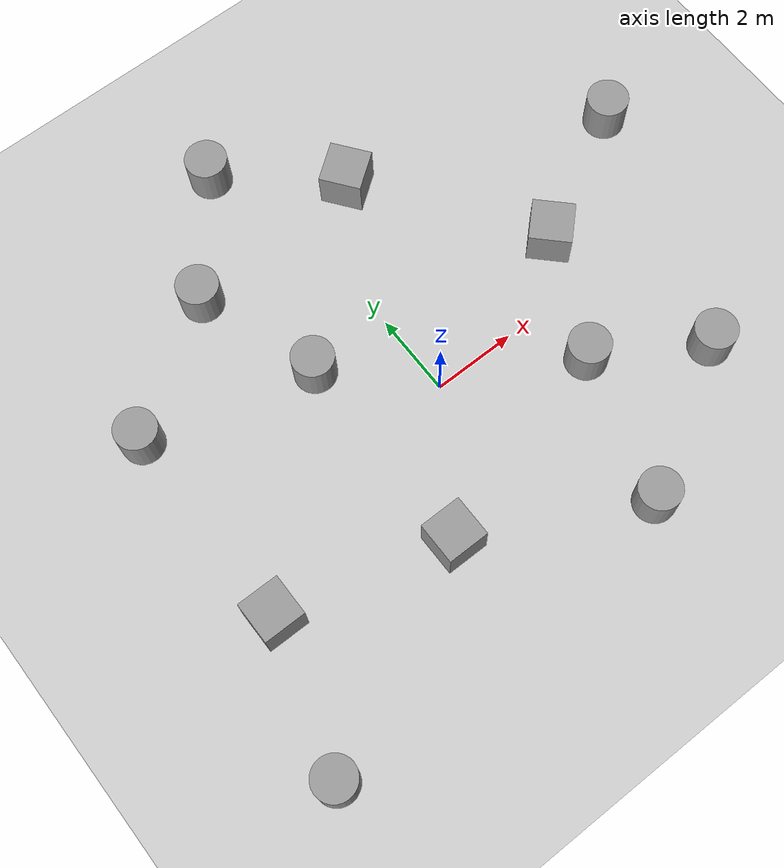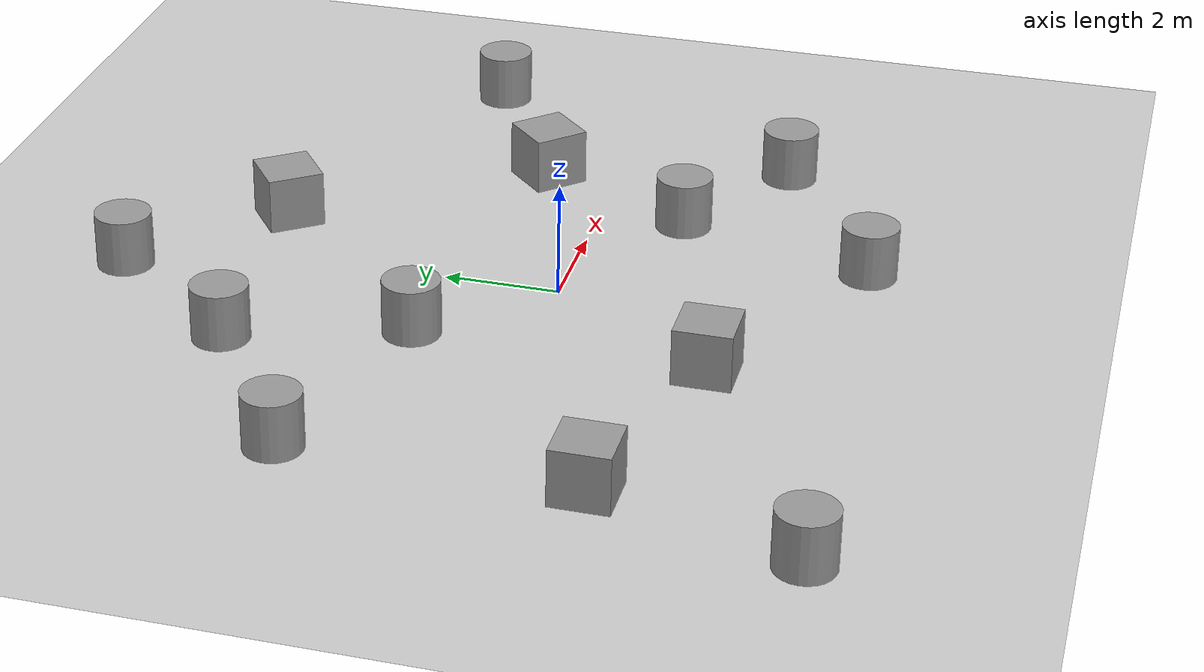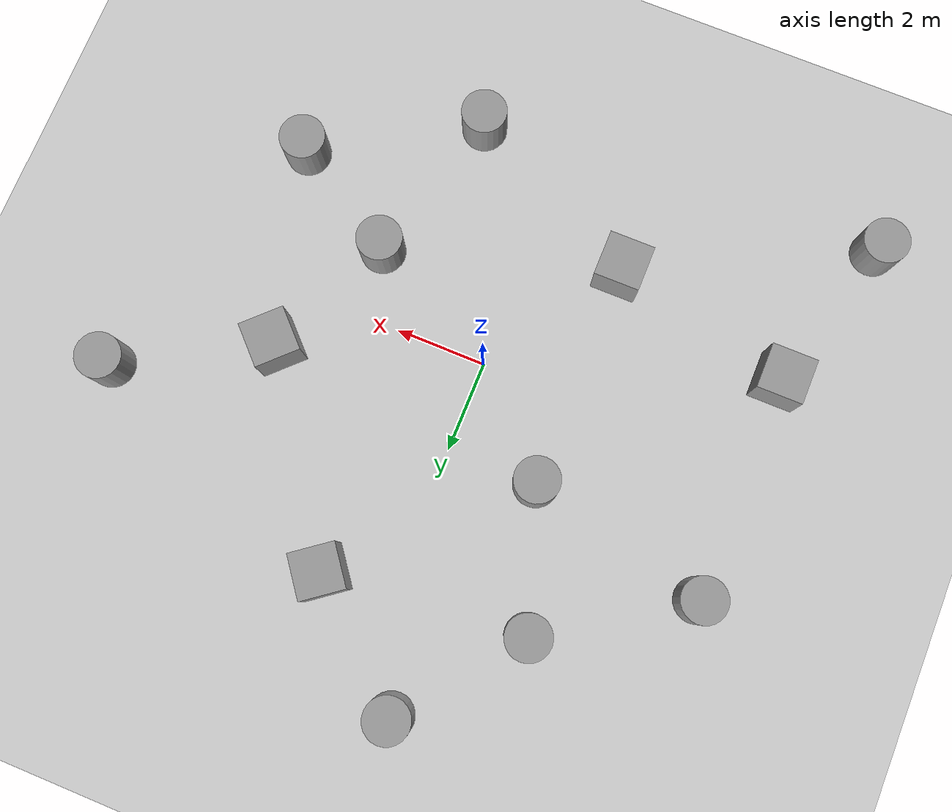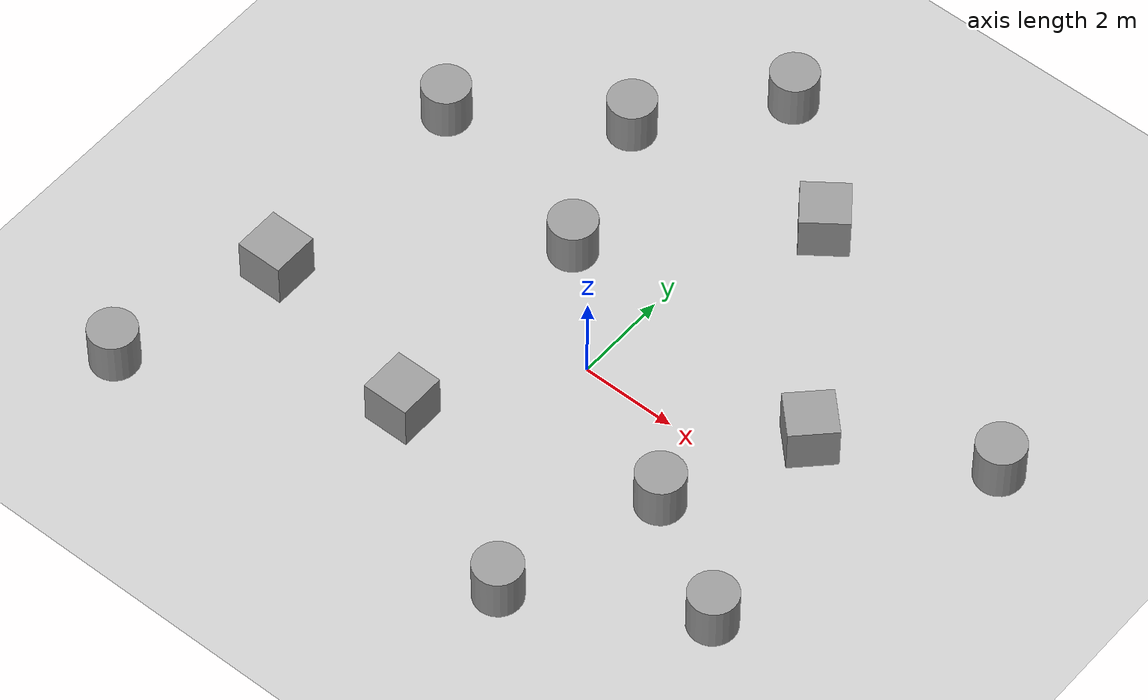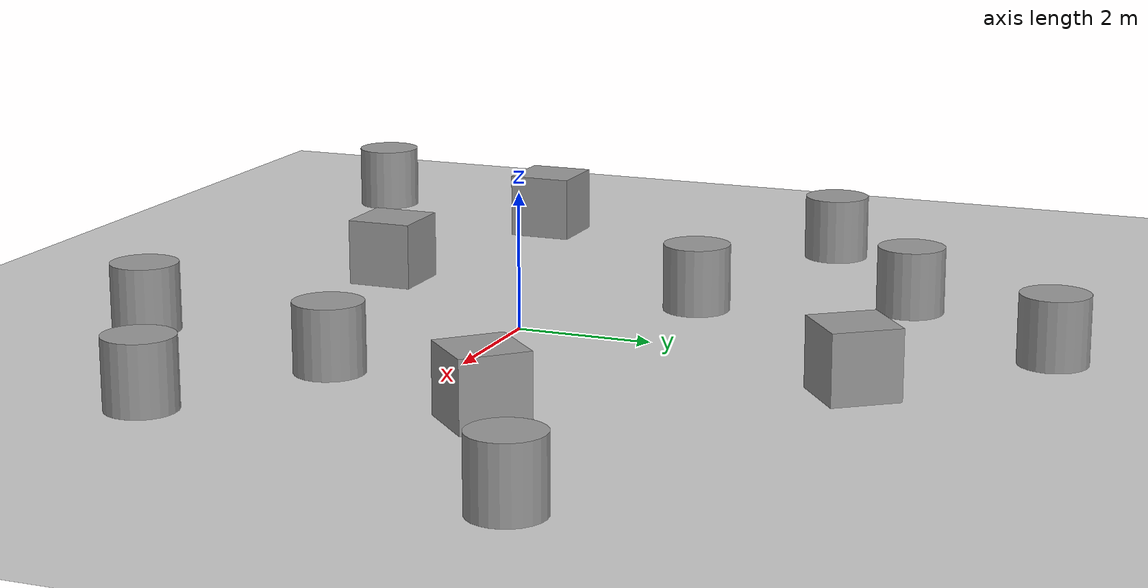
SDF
<sdf version="1.4">
 <world name="default">
  <light name="sun" type="directional">
   <pose>0 0 10 0 -0 0</pose>
   <diffuse>0.8 0.8 0.8 1</diffuse>
   <specular>0.2 0.2 0.2 1</specular>
   <attenuation>
    <range>1000</range>
    <constant>0.9</constant>
    <linear>0.01</linear>
    <quadratic>0.001</quadratic>
   </attenuation>
   <direction>-0.5 0.1 -0.9</direction>
  </light>
  <model name="ground_plane">
   <static>1</static>
   <link name="link">
    <collision name="collision">
     <geometry><plane><normal>0 0 1</normal><size>100 100</size></plane></geometry>
     <surface><friction><ode><mu>100</mu><mu2>50</mu2></ode></friction></surface>
    </collision>
    <visual name="visual">
     <cast_shadows>0</cast_shadows>
     <geometry><plane><normal>0 0 1</normal><size>100 100</size></plane></geometry>
     <material>
      <script><uri>file://media/materials/scripts/gazebo.material</uri><name>Gazebo/Grey</name></script>
     </material>
    </visual>
    <velocity_decay><linear>0</linear><angular>0</angular></velocity_decay>
   </link>
  </model>
  <physics type="ode">
   <max_step_size>0.001</max_step_size>
   <real_time_factor>1</real_time_factor>
   <real_time_update_rate>0</real_time_update_rate>
   <gravity>0 0 -9.8</gravity>
  </physics>
  <scene><ambient>0.4 0.4 0.4 1</ambient><background>0.7 0.7 0.7 1</background><shadows>1</shadows></scene>
  <spherical_coordinates>
   <surface_model>EARTH_WGS84</surface_model>
   <latitude_deg>0</latitude_deg>
   <longitude_deg>0</longitude_deg>
   <elevation>0</elevation>
   <heading_deg>0</heading_deg>
  </spherical_coordinates>
  <model name="unit_cylinder_1">
   <pose>-6 3 0.499998 0 -0 0</pose>
   <link name="link">
    <inertial>
     <mass>1</mass>
     <inertia><ixx>1</ixx><ixy>0</ixy><ixz>0</ixz><iyy>1</iyy><iyz>0</iyz><izz>1</izz></inertia>
    </inertial>
    <collision name="collision">
     <geometry><cylinder><radius>0.5</radius><length>1</length></cylinder></geometry>
    </collision>
    <visual name="visual">
     <geometry><cylinder><radius>0.5</radius><length>1</length></cylinder></geometry>
     <material>
      <script><uri>file://media/materials/scripts/gazebo.material</uri><name>Gazebo/Grey</name></script>
     </material>
    </visual>
    <velocity_decay><linear>0</linear><angular>0</angular></velocity_decay>
   </link>
   <static>0</static>
  </model>
  <model name="unit_cylinder_2">
   <pose>-3 5 0.499992 0 -0 0</pose>
   <link name="link">
    <inertial>
     <mass>1</mass>
     <inertia><ixx>1</ixx><ixy>0</ixy><ixz>0</ixz><iyy>1</iyy><iyz>0</iyz><izz>1</izz></inertia>
    </inertial>
    <collision name="collision">
     <geometry><cylinder><radius>0.5</radius><length>1</length></cylinder></geometry>
    </collision>
    <visual name="visual">
     <geometry><cylinder><radius>0.5</radius><length>1</length></cylinder></geometry>
     <material>
      <script><uri>file://media/materials/scripts/gazebo.material</uri><name>Gazebo/Grey</name></script>
     </material>
    </visual>
    <velocity_decay><linear>0</linear><angular>0</angular></velocity_decay>
   </link>
   <static>0</static>
  </model>
  <model name="unit_cylinder_3">
   <pose>-1 7.52452 0.499998 0 -0 0</pose>
   <link name="link">
    <inertial>
     <mass>1</mass>
     <inertia><ixx>1</ixx><ixy>0</ixy><ixz>0</ixz><iyy>1</iyy><iyz>0</iyz><izz>1</izz></inertia>
    </inertial>
    <collision name="collision">
     <geometry><cylinder><radius>0.5</radius><length>1</length></cylinder></geometry>
    </collision>
    <visual name="visual">
     <geometry><cylinder><radius>0.5</radius><length>1</length></cylinder></geometry>
     <material>
      <script><uri>file://media/materials/scripts/gazebo.material</uri><name>Gazebo/Grey</name></script>
     </material>
    </visual>
    <velocity_decay><linear>0</linear><angular>0</angular></velocity_decay>
   </link>
   <static>0</static>
  </model>
  <model name="unit_cylinder_4">
   <pose>2 -5 0.499995 0 -0 0</pose>
   <link name="link">
    <inertial>
     <mass>1</mass>
     <inertia><ixx>1</ixx><ixy>0</ixy><ixz>0</ixz><iyy>1</iyy><iyz>0</iyz><izz>1</izz></inertia>
    </inertial>
    <collision name="collision">
     <geometry><cylinder><radius>0.5</radius><length>1</length></cylinder></geometry>
    </collision>
    <visual name="visual">
     <geometry><cylinder><radius>0.5</radius><length>1</length></cylinder></geometry>
     <material>
      <script><uri>file://media/materials/scripts/gazebo.material</uri><name>Gazebo/Grey</name></script>
     </material>
    </visual>
    <velocity_decay><linear>0</linear><angular>0</angular></velocity_decay>
   </link>
   <static>0</static>
  </model>
  <model name="unit_cylinder_5">
   <pose>5.42441 -3 0.499996 1e-06 -1e-06 0</pose>
   <link name="link">
    <inertial>
     <mass>1</mass>
     <inertia><ixx>1</ixx><ixy>0</ixy><ixz>0</ixz><iyy>1</iyy><iyz>0</iyz><izz>1</izz></inertia>
    </inertial>
    <collision name="collision">
     <geometry><cylinder><radius>0.5</radius><length>1</length></cylinder></geometry>
    </collision>
    <visual name="visual">
     <geometry><cylinder><radius>0.5</radius><length>1</length></cylinder></geometry>
     <material>
      <script><uri>file://media/materials/scripts/gazebo.material</uri><name>Gazebo/Grey</name></script>
     </material>
    </visual>
    <velocity_decay><linear>0</linear><angular>0</angular></velocity_decay>
   </link>
   <static>0</static>
  </model>
  <model name="unit_cylinder_6">
   <pose>3 -1.52752 0.499995 0 -0 0</pose>
   <link name="link">
    <inertial>
     <mass>1</mass>
     <inertia><ixx>1</ixx><ixy>0</ixy><ixz>0</ixz><iyy>1</iyy><iyz>0</iyz><izz>1</izz></inertia>
    </inertial>
    <collision name="collision">
     <geometry><cylinder><radius>0.5</radius><length>1</length></cylinder></geometry>
    </collision>
    <visual name="visual">
     <geometry><cylinder><radius>0.5</radius><length>1</length></cylinder></geometry>
     <material>
      <script><uri>file://media/materials/scripts/gazebo.material</uri><name>Gazebo/Grey</name></script>
     </material>
    </visual>
    <velocity_decay><linear>0</linear><angular>0</angular></velocity_decay>
   </link>
   <static>0</static>
  </model>
  <model name="unit_cylinder_7">
   <pose>7.42869 3 0.499996 1e-06 -1e-06 0</pose>
   <link name="link">
    <inertial>
     <mass>1</mass>
     <inertia><ixx>1</ixx><ixy>0</ixy><ixz>0</ixz><iyy>1</iyy><iyz>0</iyz><izz>1</izz></inertia>
    </inertial>
    <collision name="collision">
     <geometry><cylinder><radius>0.5</radius><length>1</length></cylinder></geometry>
    </collision>
    <visual name="visual">
     <geometry><cylinder><radius>0.5</radius><length>1</length></cylinder></geometry>
     <material>
      <script><uri>file://media/materials/scripts/gazebo.material</uri><name>Gazebo/Grey</name></script>
     </material>
    </visual>
    <velocity_decay><linear>0</linear><angular>0</angular></velocity_decay>
   </link>
   <static>0</static>
  </model>
  <model name="unit_box_1">
   <pose>-5.99847 -1.9916 0.5 0 -0 -0.003009</pose>
   <link name="link">
    <inertial>
     <mass>1</mass>
     <inertia><ixx>1</ixx><ixy>0</ixy><ixz>0</ixz><iyy>1</iyy><iyz>0</iyz><izz>1</izz></inertia>
    </inertial>
    <collision name="collision"><geometry><box><size>1 1 1</size></box></geometry></collision>
    <visual name="visual">
     <geometry><box><size>1 1 1</size></box></geometry>
     <material>
      <script><uri>file://media/materials/scripts/gazebo.material</uri><name>Gazebo/Grey</name></script>
     </material>
    </visual>
    <velocity_decay><linear>0</linear><angular>0</angular></velocity_decay>
   </link>
   <static>0</static>
  </model>
  <model name="unit_box_2">
   <pose>4.28739 1.30528 0.5 0 -0 -0.791067</pose>
   <link name="link">
    <inertial>
     <mass>1</mass>
     <inertia><ixx>1</ixx><ixy>0</ixy><ixz>0</ixz><iyy>1</iyy><iyz>0</iyz><izz>1</izz></inertia>
    </inertial>
    <collision name="collision"><geometry><box><size>1 1 1</size></box></geometry></collision>
    <visual name="visual">
     <geometry><box><size>1 1 1</size></box></geometry>
     <material>
      <script><uri>file://media/materials/scripts/gazebo.material</uri><name>Gazebo/Grey</name></script>
     </material>
    </visual>
    <velocity_decay><linear>0</linear><angular>0</angular></velocity_decay>
   </link>
   <static>0</static>
  </model>
  <model name="unit_box_3">
   <pose>1.44 5.37064 0.5 -1.10715 1.57079 -2.03444</pose>
   <link name="link">
    <inertial>
     <mass>1</mass>
     <inertia><ixx>1</ixx><ixy>0</ixy><ixz>0</ixz><iyy>1</iyy><iyz>0</iyz><izz>1</izz></inertia>
    </inertial>
    <collision name="collision"><geometry><box><size>1 1 1</size></box></geometry></collision>
    <visual name="visual">
     <geometry><box><size>1 1 1</size></box></geometry>
     <material>
      <script><uri>file://media/materials/scripts/gazebo.material</uri><name>Gazebo/Grey</name></script>
     </material>
    </visual>
    <velocity_decay><linear>0</linear><angular>0</angular></velocity_decay>
   </link>
   <static>0</static>
  </model>
  <model name="unit_box_1_0">
   <pose>-2 -3 0.5 0 -0 0</pose>
   <link name="link">
    <inertial>
     <mass>1</mass>
     <inertia><ixx>1</ixx><ixy>0</ixy><ixz>0</ixz><iyy>1</iyy><iyz>0</iyz><izz>1</izz></inertia>
    </inertial>
    <collision name="collision"><geometry><box><size>1 1 1</size></box></geometry></collision>
    <visual name="visual">
     <geometry><box><size>1 1 1</size></box></geometry>
     <material>
      <script><uri>file://media/materials/scripts/gazebo.material</uri><name>Gazebo/Grey</name></script>
     </material>
    </visual>
    <velocity_decay><linear>0</linear><angular>0</angular></velocity_decay>
   </link>
   <static>0</static>
  </model>
  <model name="unit_cylinder_1_0">
   <pose>-2 2 0.499998 0 -0 0</pose>
   <link name="link">
    <inertial>
     <mass>1</mass>
     <inertia><ixx>1</ixx><ixy>0</ixy><ixz>0</ixz><iyy>1</iyy><iyz>0</iyz><izz>1</izz></inertia>
    </inertial>
    <collision name="collision">
     <geometry><cylinder><radius>0.5</radius><length>1</length></cylinder></geometry>
    </collision>
    <visual name="visual">
     <geometry><cylinder><radius>0.5</radius><length>1</length></cylinder></geometry>
     <material>
      <script><uri>file://media/materials/scripts/gazebo.material</uri><name>Gazebo/Grey</name></script>
     </material>
    </visual>
    <velocity_decay><linear>0</linear><angular>0</angular></velocity_decay>
   </link>
   <static>0</static>
  </model>
  <model name="unit_cylinder_2_0">
   <pose>-7 -5.49005 0.499992 0 -0 0</pose>
   <link name="link">
    <inertial>
     <mass>1</mass>
     <inertia><ixx>1</ixx><ixy>0</ixy><ixz>0</ixz><iyy>1</iyy><iyz>0</iyz><izz>1</izz></inertia>
    </inertial>
    <collision name="collision">
     <geometry><cylinder><radius>0.5</radius><length>1</length></cylinder></geometry>
    </collision>
    <visual name="visual">
     <geometry><cylinder><radius>0.5</radius><length>1</length></cylinder></geometry>
     <material>
      <script><uri>file://media/materials/scripts/gazebo.material</uri><name>Gazebo/Grey</name></script>
     </material>
    </visual>
    <velocity_decay><linear>0</linear><angular>0</angular></velocity_decay>
   </link>
   <static>0</static>
  </model>
 </world>
</sdf>
